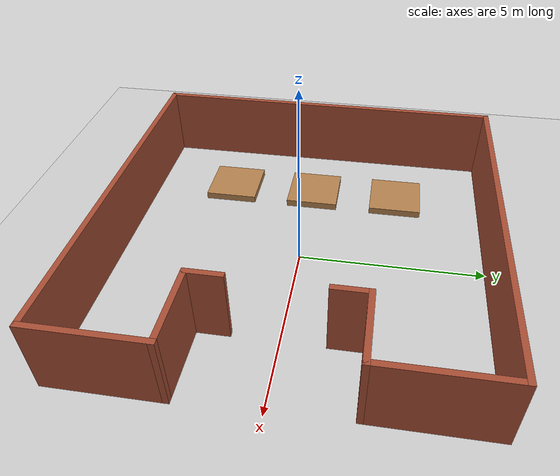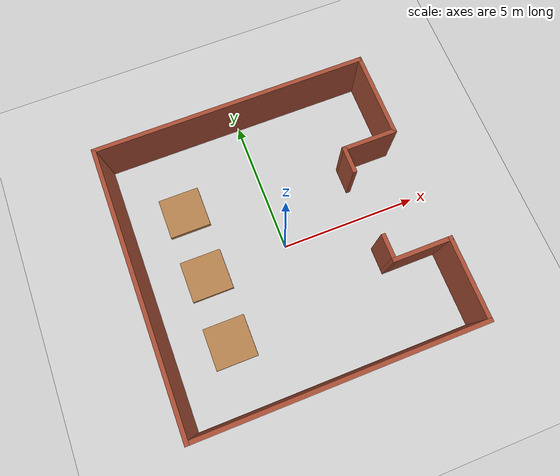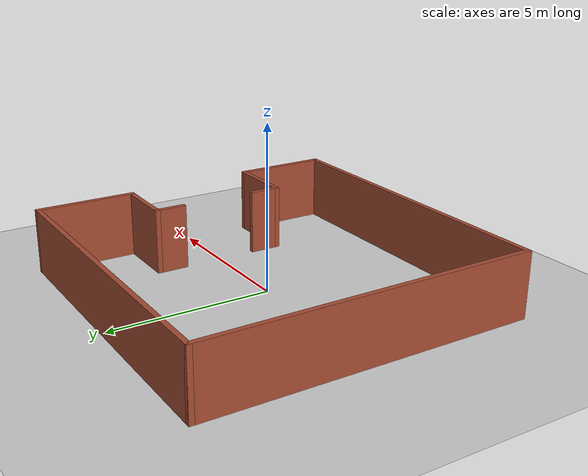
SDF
<sdf version="1.7">
 <world name="default">
  <light name="sun" type="directional">
   <pose>0 0 10 0 -0 0</pose>
   <diffuse>0.8 0.8 0.8 1</diffuse>
   <specular>0.2 0.2 0.2 1</specular>
   <attenuation>
    <range>1000</range>
    <constant>0.9</constant>
    <linear>0.01</linear>
    <quadratic>0.001</quadratic>
   </attenuation>
   <direction>-0.5 0.1 -0.9</direction>
   <spot><inner_angle>0</inner_angle><outer_angle>0</outer_angle><falloff>0</falloff></spot>
  </light>
  <model name="ground_plane">
   <static>1</static>
   <link name="link">
    <collision name="collision">
     <geometry><plane><normal>0 0 1</normal><size>100 100</size></plane></geometry>
     <surface><friction><ode><mu>100</mu><mu2>50</mu2></ode></friction></surface>
    </collision>
    <visual name="visual">
     <cast_shadows>0</cast_shadows>
     <geometry><plane><normal>0 0 1</normal><size>100 100</size></plane></geometry>
     <material>
      <script><uri>file://media/materials/scripts/gazebo.material</uri><name>Gazebo/Grey</name></script>
     </material>
    </visual>
   </link>
  </model>
  <gravity>0 0 -9.8</gravity>
  <magnetic_field>6e-06 2.3e-05 -4.2e-05</magnetic_field>
  <atmosphere type="adiabatic"/>
  <physics type="ode">
   <max_step_size>0.001</max_step_size>
   <real_time_factor>1</real_time_factor>
   <real_time_update_rate>1000</real_time_update_rate>
  </physics>
  <scene><ambient>0.4 0.4 0.4 1</ambient><background>0.7 0.7 0.7 1</background><shadows>1</shadows></scene>
  <spherical_coordinates>
   <surface_model>EARTH_WGS84</surface_model>
   <latitude_deg>0</latitude_deg>
   <longitude_deg>0</longitude_deg>
   <elevation>0</elevation>
   <heading_deg>0</heading_deg>
  </spherical_coordinates>
  <model name="PackaingArea_1">
   <link name="link_0">
    <inertial>
     <mass>1</mass>
     <inertia>
      <ixx>0.166667</ixx>
      <ixy>0</ixy>
      <ixz>0</ixz>
      <iyy>0.166667</iyy>
      <iyz>0</iyz>
      <izz>0.166667</izz>
     </inertia>
    </inertial>
    <visual name="visual">
     <geometry><box><size>1.5 1.5 0.2</size></box></geometry>
     <material>
      <lighting>1</lighting>
      <script><uri>file://media/materials/scripts/gazebo.material</uri><name>Gazebo/WoodPallet</name></script>
      <shader type="pixel"><normal_map>__default__</normal_map></shader>
      <ambient>0.3 0.3 0.3 1</ambient>
      <diffuse>0.7 0.7 0.7 1</diffuse>
      <specular>0.01 0.01 0.01 1</specular>
      <emissive>0 0 0 1</emissive>
     </material>
    </visual>
    <collision name="collision">
     <geometry><box><size>1.5 1.5 0.2</size></box></geometry>
     <surface>
      <friction>
       <ode><mu>1</mu><mu2>1</mu2><fdir1>0 0 0</fdir1><slip1>0</slip1><slip2>0</slip2></ode>
       <torsional>
        <coefficient>1</coefficient>
        <patch_radius>0</patch_radius>
        <surface_radius>0</surface_radius>
        <use_patch_radius>1</use_patch_radius>
        <ode><slip>0</slip></ode>
       </torsional>
      </friction>
      <bounce><restitution_coefficient>0</restitution_coefficient><threshold>1e+06</threshold></bounce>
      <contact>
       <collide_without_contact>0</collide_without_contact>
       <collide_without_contact_bitmask>1</collide_without_contact_bitmask>
       <collide_bitmask>1</collide_bitmask>
       <ode>
        <soft_cfm>0</soft_cfm>
        <soft_erp>0.2</soft_erp>
        <kp>1e+13</kp>
        <kd>1</kd>
        <max_vel>0.01</max_vel>
        <min_depth>0</min_depth>
       </ode>
       <bullet>
        <split_impulse>1</split_impulse>
        <split_impulse_penetration_threshold>-0.01</split_impulse_penetration_threshold>
        <soft_cfm>0</soft_cfm>
        <soft_erp>0.2</soft_erp>
        <kp>1e+13</kp>
        <kd>1</kd>
       </bullet>
      </contact>
     </surface>
    </collision>
   </link>
   <static>0</static>
   <pose>-3 2.5 0.1 0 0 -2e-06</pose>
  </model>
  <model name="PackaingArea_2">
   <link name="link_0">
    <inertial>
     <mass>1</mass>
     <inertia>
      <ixx>0.166667</ixx>
      <ixy>0</ixy>
      <ixz>0</ixz>
      <iyy>0.166667</iyy>
      <iyz>0</iyz>
      <izz>0.166667</izz>
     </inertia>
    </inertial>
    <visual name="visual">
     <geometry><box><size>1.5 1.5 0.2</size></box></geometry>
     <material>
      <lighting>1</lighting>
      <script><uri>file://media/materials/scripts/gazebo.material</uri><name>Gazebo/WoodPallet</name></script>
      <shader type="pixel"><normal_map>__default__</normal_map></shader>
      <ambient>0.3 0.3 0.3 1</ambient>
      <diffuse>0.7 0.7 0.7 1</diffuse>
      <specular>0.01 0.01 0.01 1</specular>
      <emissive>0 0 0 1</emissive>
     </material>
    </visual>
    <collision name="collision">
     <geometry><box><size>1.5 1.5 0.2</size></box></geometry>
     <surface>
      <friction>
       <ode><mu>1</mu><mu2>1</mu2><fdir1>0 0 0</fdir1><slip1>0</slip1><slip2>0</slip2></ode>
       <torsional>
        <coefficient>1</coefficient>
        <patch_radius>0</patch_radius>
        <surface_radius>0</surface_radius>
        <use_patch_radius>1</use_patch_radius>
        <ode><slip>0</slip></ode>
       </torsional>
      </friction>
      <bounce><restitution_coefficient>0</restitution_coefficient><threshold>1e+06</threshold></bounce>
      <contact>
       <collide_without_contact>0</collide_without_contact>
       <collide_without_contact_bitmask>1</collide_without_contact_bitmask>
       <collide_bitmask>1</collide_bitmask>
       <ode>
        <soft_cfm>0</soft_cfm>
        <soft_erp>0.2</soft_erp>
        <kp>1e+13</kp>
        <kd>1</kd>
        <max_vel>0.01</max_vel>
        <min_depth>0</min_depth>
       </ode>
       <bullet>
        <split_impulse>1</split_impulse>
        <split_impulse_penetration_threshold>-0.01</split_impulse_penetration_threshold>
        <soft_cfm>0</soft_cfm>
        <soft_erp>0.2</soft_erp>
        <kp>1e+13</kp>
        <kd>1</kd>
       </bullet>
      </contact>
     </surface>
    </collision>
   </link>
   <static>0</static>
   <pose>-3 -1e-06 0.1 0 0 -2e-06</pose>
  </model>
  <model name="PackaingArea_3">
   <link name="link_0">
    <inertial>
     <mass>1</mass>
     <inertia>
      <ixx>0.166667</ixx>
      <ixy>0</ixy>
      <ixz>0</ixz>
      <iyy>0.166667</iyy>
      <iyz>0</iyz>
      <izz>0.166667</izz>
     </inertia>
    </inertial>
    <visual name="visual">
     <geometry><box><size>1.5 1.5 0.2</size></box></geometry>
     <material>
      <lighting>1</lighting>
      <script><uri>file://media/materials/scripts/gazebo.material</uri><name>Gazebo/WoodPallet</name></script>
      <shader type="pixel"><normal_map>__default__</normal_map></shader>
      <ambient>0.3 0.3 0.3 1</ambient>
      <diffuse>0.7 0.7 0.7 1</diffuse>
      <specular>0.01 0.01 0.01 1</specular>
      <emissive>0 0 0 1</emissive>
     </material>
    </visual>
    <collision name="collision">
     <geometry><box><size>1.5 1.5 0.2</size></box></geometry>
     <surface>
      <friction>
       <ode><mu>1</mu><mu2>1</mu2><fdir1>0 0 0</fdir1><slip1>0</slip1><slip2>0</slip2></ode>
       <torsional>
        <coefficient>1</coefficient>
        <patch_radius>0</patch_radius>
        <surface_radius>0</surface_radius>
        <use_patch_radius>1</use_patch_radius>
        <ode><slip>0</slip></ode>
       </torsional>
      </friction>
      <bounce><restitution_coefficient>0</restitution_coefficient><threshold>1e+06</threshold></bounce>
      <contact>
       <collide_without_contact>0</collide_without_contact>
       <collide_without_contact_bitmask>1</collide_without_contact_bitmask>
       <collide_bitmask>1</collide_bitmask>
       <ode>
        <soft_cfm>0</soft_cfm>
        <soft_erp>0.2</soft_erp>
        <kp>1e+13</kp>
        <kd>1</kd>
        <max_vel>0.01</max_vel>
        <min_depth>0</min_depth>
       </ode>
       <bullet>
        <split_impulse>1</split_impulse>
        <split_impulse_penetration_threshold>-0.01</split_impulse_penetration_threshold>
        <soft_cfm>0</soft_cfm>
        <soft_erp>0.2</soft_erp>
        <kp>1e+13</kp>
        <kd>1</kd>
       </bullet>
      </contact>
     </surface>
    </collision>
   </link>
   <static>0</static>
   <pose>-3 -2.5 0.1 0 0 -2e-06</pose>
  </model>
  <model name="Factory">
   <pose>-0.056459 0.04081 0 0 -0 0</pose>
   <link name="Wall_1">
    <collision name="Wall_1_Collision">
     <geometry><box><size>10 0.15 2</size></box></geometry>
     <pose>0 0 1 0 -0 0</pose>
    </collision>
    <visual name="Wall_1_Visual">
     <pose>0 0 1 0 -0 0</pose>
     <geometry><box><size>10 0.15 2</size></box></geometry>
     <material>
      <script><uri>file://media/materials/scripts/gazebo.material</uri><name>Gazebo/Bricks</name></script>
      <ambient>1 1 1 1</ambient>
     </material>
     <meta><layer>0</layer></meta>
    </visual>
    <pose>-0.075 5 0 0 -0 0</pose>
   </link>
   <link name="Wall_11">
    <collision name="Wall_11_Collision">
     <geometry><box><size>3 0.15 2</size></box></geometry>
     <pose>0 0 1 0 -0 0</pose>
    </collision>
    <visual name="Wall_11_Visual">
     <pose>0 0 1 0 -0 0</pose>
     <geometry><box><size>3 0.15 2</size></box></geometry>
     <material>
      <script><uri>file://media/materials/scripts/gazebo.material</uri><name>Gazebo/Bricks</name></script>
      <ambient>1 1 1 1</ambient>
     </material>
     <meta><layer>0</layer></meta>
    </visual>
    <pose>5 -3.575 0 0 -0 1.5708</pose>
   </link>
   <link name="Wall_13">
    <collision name="Wall_13_Collision">
     <geometry><box><size>2 0.15 2</size></box></geometry>
     <pose>0 0 1 0 -0 0</pose>
    </collision>
    <visual name="Wall_13_Visual">
     <pose>0 0 1 0 -0 0</pose>
     <geometry><box><size>2 0.15 2</size></box></geometry>
     <material>
      <script><uri>file://media/materials/scripts/gazebo.material</uri><name>Gazebo/Bricks</name></script>
      <ambient>1 1 1 1</ambient>
     </material>
     <meta><layer>0</layer></meta>
    </visual>
    <pose>3.925 2 0 0 -0 3.14159</pose>
   </link>
   <link name="Wall_14">
    <collision name="Wall_14_Collision">
     <geometry><box><size>1 0.15 2</size></box></geometry>
     <pose>0 0 1 0 -0 0</pose>
    </collision>
    <visual name="Wall_14_Visual">
     <pose>0 0 1 0 -0 0</pose>
     <geometry><box><size>1 0.15 2</size></box></geometry>
     <material>
      <script><uri>file://media/materials/scripts/gazebo.material</uri><name>Gazebo/Bricks</name></script>
      <ambient>1 1 1 1</ambient>
     </material>
     <meta><layer>0</layer></meta>
    </visual>
    <pose>3 1.575 0 0 -0 -1.5708</pose>
   </link>
   <link name="Wall_16">
    <collision name="Wall_16_Collision">
     <geometry><box><size>2.15 0.15 2</size></box></geometry>
     <pose>0 0 1 0 -0 0</pose>
    </collision>
    <visual name="Wall_16_Visual">
     <pose>0 0 1 0 -0 0</pose>
     <geometry><box><size>2.15 0.15 2</size></box></geometry>
     <material>
      <script><uri>file://media/materials/scripts/gazebo.material</uri><name>Gazebo/Bricks</name></script>
      <ambient>1 1 1 1</ambient>
     </material>
     <meta><layer>0</layer></meta>
    </visual>
    <pose>4 -2.15 0 0 -0 3.14159</pose>
   </link>
   <link name="Wall_18">
    <collision name="Wall_18_Collision">
     <geometry><box><size>1 0.15 2</size></box></geometry>
     <pose>0 0 1 0 -0 0</pose>
    </collision>
    <visual name="Wall_18_Visual">
     <pose>0 0 1 0 -0 0</pose>
     <geometry><box><size>1 0.15 2</size></box></geometry>
     <material>
      <script><uri>file://media/materials/scripts/gazebo.material</uri><name>Gazebo/Bricks</name></script>
      <ambient>1 1 1 1</ambient>
     </material>
     <meta><layer>0</layer></meta>
    </visual>
    <pose>3 -1.725 0 0 -0 1.5708</pose>
   </link>
   <link name="Wall_3">
    <collision name="Wall_3_Collision">
     <geometry><box><size>10.15 0.15 2</size></box></geometry>
     <pose>0 0 1 0 -0 0</pose>
    </collision>
    <visual name="Wall_3_Visual">
     <pose>0 0 1 0 -0 0</pose>
     <geometry><box><size>10.15 0.15 2</size></box></geometry>
     <material>
      <script><uri>file://media/materials/scripts/gazebo.material</uri><name>Gazebo/Bricks</name></script>
      <ambient>1 1 1 1</ambient>
     </material>
     <meta><layer>0</layer></meta>
    </visual>
    <pose>-5 0 0 0 -0 -1.5708</pose>
   </link>
   <link name="Wall_6">
    <collision name="Wall_6_Collision">
     <geometry><box><size>10.15 0.15 2</size></box></geometry>
     <pose>0 0 1 0 -0 0</pose>
    </collision>
    <visual name="Wall_6_Visual">
     <pose>0 0 1 0 -0 0</pose>
     <geometry><box><size>10.15 0.15 2</size></box></geometry>
     <material>
      <script><uri>file://media/materials/scripts/gazebo.material</uri><name>Gazebo/Bricks</name></script>
      <ambient>1 1 1 1</ambient>
     </material>
     <meta><layer>0</layer></meta>
    </visual>
    <pose>0 -5 0 0 -0 0</pose>
   </link>
   <link name="Wall_9">
    <collision name="Wall_9_Collision">
     <geometry><box><size>3.15 0.15 2</size></box></geometry>
     <pose>0 0 1 0 -0 0</pose>
    </collision>
    <visual name="Wall_9_Visual">
     <pose>0 0 1 0 -0 0</pose>
     <geometry><box><size>3.15 0.15 2</size></box></geometry>
     <material>
      <script><uri>file://media/materials/scripts/gazebo.material</uri><name>Gazebo/Bricks</name></script>
      <ambient>1 1 1 1</ambient>
     </material>
     <meta><layer>0</layer></meta>
    </visual>
    <pose>4.85 3.5 0 0 -0 -1.5708</pose>
   </link>
   <static>1</static>
  </model>
 </world>
</sdf>
